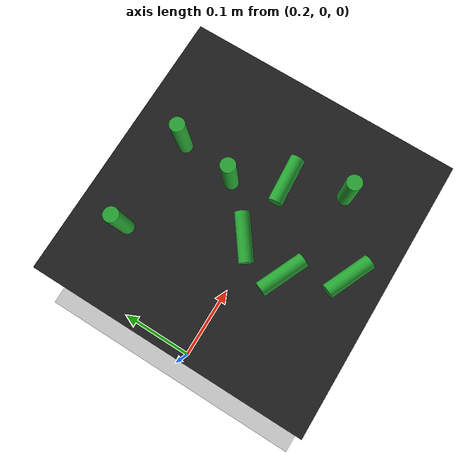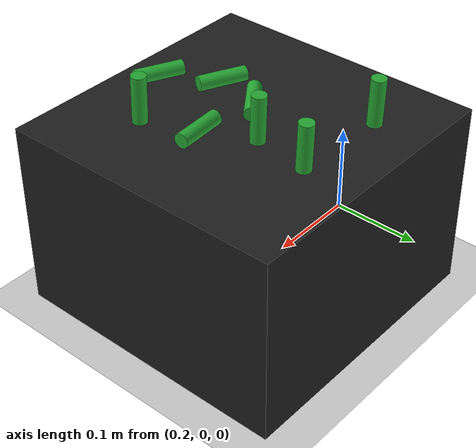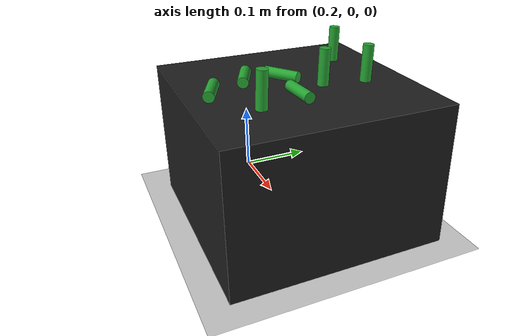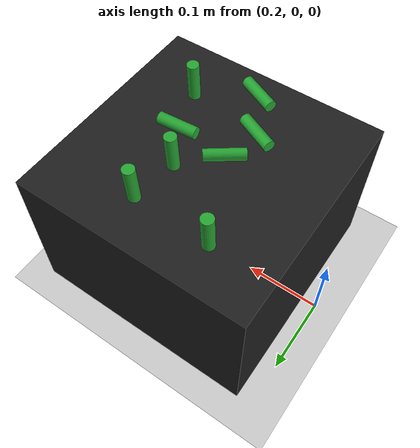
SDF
<sdf version="1.6">
 <world name="empty">
  <light name="sun" type="directional">
   <pose>0 0 10 0 -0 0</pose>
   <diffuse>0.8 0.8 0.8 1</diffuse>
   <specular>0.2 0.2 0.2 1</specular>
   <attenuation>
    <range>1000</range>
    <constant>0.9</constant>
    <linear>0.01</linear>
    <quadratic>0.001</quadratic>
   </attenuation>
   <direction>-0.5 0.1 -0.9</direction>
  </light>
  <model name="ground_plane">
   <static>1</static>
   <link name="link">
    <collision name="collision">
     <geometry><plane><normal>0 0 1</normal><size>100 100</size></plane></geometry>
     <surface><friction><ode><mu>100</mu><mu2>50</mu2></ode></friction></surface>
    </collision>
    <visual name="visual">
     <cast_shadows>0</cast_shadows>
     <geometry><plane><normal>0 0 1</normal><size>100 100</size></plane></geometry>
     <material>
      <script><uri>file://media/materials/scripts/gazebo.material</uri><name>Gazebo/Grey</name></script>
     </material>
    </visual>
   </link>
  </model>
  <physics name="default_physics" default="0" type="ode">
   <max_step_size>0.001</max_step_size>
   <real_time_factor>1</real_time_factor>
   <real_time_update_rate>1000</real_time_update_rate>
  </physics>
  <model name="coke_can_box_model">
   <pose>0.300249 0.104743 0.224752 -0.036841 0.010226 -0.000233</pose>
   <link name="coke_can">
    <inertial>
     <mass>1e-05</mass>
     <inertia><ixx>0.00016</ixx><ixy>0</ixy><ixz>0</ixz><iyy>0.00016</iyy><iyz>0</iyz><izz>6e-05</izz></inertia>
    </inertial>
    <collision name="collision">
     <geometry><cylinder><radius>0.0075</radius><length>0.05</length></cylinder></geometry>
     <surface>
      <friction><ode><mu>1e+13</mu><mu2>1e+12</mu2></ode></friction>
      <contact><ode><kp>1e+07</kp><kd>1</kd><min_depth>0.001</min_depth><max_vel>0.1</max_vel></ode></contact>
     </surface>
    </collision>
    <visual name="visual">
     <geometry><cylinder><radius>0.0075</radius><length>0.05</length></cylinder></geometry>
     <material>
      <script><name>Gazebo/Green</name><uri>file://media/materials/scripts/gazebo.material</uri></script>
     </material>
    </visual>
   </link>
  </model>
  <model name="coke_can_box_model_2">
   <pose>0.400238 0.100915 0.224768 -0.037141 0.009688 -0.00017</pose>
   <link name="coke_can">
    <inertial>
     <mass>1e-05</mass>
     <inertia><ixx>0.00016</ixx><ixy>0</ixy><ixz>0</ixz><iyy>0.00016</iyy><iyz>0</iyz><izz>6e-05</izz></inertia>
    </inertial>
    <collision name="collision">
     <geometry><cylinder><radius>0.0075</radius><length>0.05</length></cylinder></geometry>
     <surface>
      <friction><ode><mu>1e+12</mu><mu2>1e+12</mu2></ode></friction>
      <contact><ode><kp>1e+07</kp><kd>1</kd><min_depth>0.001</min_depth><max_vel>0.1</max_vel></ode></contact>
     </surface>
    </collision>
    <visual name="visual">
     <geometry><cylinder><radius>0.0075</radius><length>0.05</length></cylinder></geometry>
     <material>
      <script><name>Gazebo/Green</name><uri>file://media/materials/scripts/gazebo.material</uri></script>
     </material>
    </visual>
   </link>
  </model>
  <model name="coke_can_box_model_3">
   <pose>0.369343 -0.103681 0.207481 -0.923464 1.5622 -1.34516</pose>
   <link name="coke_can">
    <inertial>
     <mass>1e-05</mass>
     <inertia><ixx>0.00016</ixx><ixy>0</ixy><ixz>0</ixz><iyy>0.00016</iyy><iyz>0</iyz><izz>6e-05</izz></inertia>
    </inertial>
    <collision name="collision">
     <geometry><cylinder><radius>0.0075</radius><length>0.05</length></cylinder></geometry>
     <surface>
      <friction><ode><mu>1e+12</mu><mu2>1e+12</mu2></ode></friction>
      <contact><ode><kp>1e+07</kp><kd>1</kd><min_depth>0.001</min_depth><max_vel>0.1</max_vel></ode></contact>
     </surface>
    </collision>
    <visual name="visual">
     <geometry><cylinder><radius>0.0075</radius><length>0.05</length></cylinder></geometry>
     <material>
      <script><name>Gazebo/Green</name><uri>file://media/materials/scripts/gazebo.material</uri></script>
     </material>
    </visual>
   </link>
  </model>
  <model name="coke_can_box_model_4">
   <pose>0.350005 5.1e-05 0.207482 1.56584 -0.005688 -0.936281</pose>
   <link name="coke_can">
    <inertial>
     <mass>1e-05</mass>
     <inertia><ixx>0.00016</ixx><ixy>0</ixy><ixz>0</ixz><iyy>0.00016</iyy><iyz>0</iyz><izz>6e-05</izz></inertia>
    </inertial>
    <collision name="collision">
     <geometry><cylinder><radius>0.0075</radius><length>0.05</length></cylinder></geometry>
     <surface>
      <friction><ode><mu>1e+12</mu><mu2>1e+12</mu2></ode></friction>
      <contact><ode><kp>1e+07</kp><kd>1</kd><min_depth>0.001</min_depth><max_vel>0.1</max_vel></ode></contact>
     </surface>
    </collision>
    <visual name="visual">
     <geometry><cylinder><radius>0.0075</radius><length>0.05</length></cylinder></geometry>
     <material>
      <script><name>Gazebo/Green</name><uri>file://media/materials/scripts/gazebo.material</uri></script>
     </material>
    </visual>
   </link>
  </model>
  <model name="table_box_model">
   <static>1</static>
   <pose>0.369728 0.00873 0.1 0 -0 1.5708</pose>
   <link name="table_box_link">
    <inertial>
     <mass>1</mass>
     <inertia>
      <ixx>0.166667</ixx>
      <ixy>0</ixy>
      <ixz>0</ixz>
      <iyy>0.166667</iyy>
      <iyz>0</iyz>
      <izz>0.166667</izz>
     </inertia>
    </inertial>
    <collision name="collision">
     <geometry><box><size>0.3 0.3 0.2</size></box></geometry>
     <surface><friction><ode><mu>0.6</mu><mu2>0.6</mu2></ode></friction></surface>
    </collision>
    <visual name="visual">
     <geometry><box><size>0.3 0.3 0.2</size></box></geometry>
     <material>
      <script><name>Gazebo/Black</name><uri>file://media/materials/scripts/gazebo.material</uri></script>
     </material>
    </visual>
   </link>
  </model>
  <gravity>0 0 -9.81</gravity>
  <magnetic_field>6e-06 2.3e-05 -4.2e-05</magnetic_field>
  <atmosphere type="adiabatic"/>
  <scene><ambient>0.4 0.4 0.4 1</ambient><background>0.7 0.7 0.7 1</background><shadows>1</shadows></scene>
  <spherical_coordinates>
   <surface_model>EARTH_WGS84</surface_model>
   <latitude_deg>0</latitude_deg>
   <longitude_deg>0</longitude_deg>
   <elevation>0</elevation>
   <heading_deg>0</heading_deg>
  </spherical_coordinates>
  <model name="coke_can_box_model_4_clone">
   <pose>0.419399 -0.005784 0.207496 1.56965 -0.007504 -1.49935</pose>
   <link name="coke_can">
    <inertial>
     <mass>1e-05</mass>
     <inertia><ixx>0.00016</ixx><ixy>0</ixy><ixz>0</ixz><iyy>0.00016</iyy><iyz>0</iyz><izz>6e-05</izz></inertia>
    </inertial>
    <collision name="collision">
     <geometry><cylinder><radius>0.0075</radius><length>0.05</length></cylinder></geometry>
     <surface>
      <friction><ode><mu>1e+12</mu><mu2>1e+12</mu2></ode></friction>
      <contact><ode><kp>1e+07</kp><kd>1</kd><min_depth>0.001</min_depth><max_vel>0.1</max_vel></ode></contact>
     </surface>
    </collision>
    <visual name="visual">
     <geometry><cylinder><radius>0.0075</radius><length>0.05</length></cylinder></geometry>
     <material>
      <script><name>Gazebo/Green</name><uri>file://media/materials/scripts/gazebo.material</uri></script>
     </material>
    </visual>
   </link>
  </model>
  <model name="coke_can_box_model_3_clone">
   <pose>0.338198 -0.049158 0.207481 -0.923404 1.5622 -1.3451</pose>
   <link name="coke_can">
    <inertial>
     <mass>1e-05</mass>
     <inertia><ixx>0.00016</ixx><ixy>0</ixy><ixz>0</ixz><iyy>0.00016</iyy><iyz>0</iyz><izz>6e-05</izz></inertia>
    </inertial>
    <collision name="collision">
     <geometry><cylinder><radius>0.0075</radius><length>0.05</length></cylinder></geometry>
     <surface>
      <friction><ode><mu>1e+12</mu><mu2>1e+12</mu2></ode></friction>
      <contact><ode><kp>1e+07</kp><kd>1</kd><min_depth>0.001</min_depth><max_vel>0.1</max_vel></ode></contact>
     </surface>
    </collision>
    <visual name="visual">
     <geometry><cylinder><radius>0.0075</radius><length>0.05</length></cylinder></geometry>
     <material>
      <script><name>Gazebo/Green</name><uri>file://media/materials/scripts/gazebo.material</uri></script>
     </material>
    </visual>
   </link>
  </model>
  <model name="coke_can_box_model_clone">
   <pose>0.39175 0.041483 0.224751 -0.036827 0.010214 -0.000234</pose>
   <link name="coke_can">
    <inertial>
     <mass>1e-05</mass>
     <inertia><ixx>0.00016</ixx><ixy>0</ixy><ixz>0</ixz><iyy>0.00016</iyy><iyz>0</iyz><izz>6e-05</izz></inertia>
    </inertial>
    <collision name="collision">
     <geometry><cylinder><radius>0.0075</radius><length>0.05</length></cylinder></geometry>
     <surface>
      <friction><ode><mu>1e+13</mu><mu2>1e+12</mu2></ode></friction>
      <contact><ode><kp>1e+07</kp><kd>1</kd><min_depth>0.001</min_depth><max_vel>0.1</max_vel></ode></contact>
     </surface>
    </collision>
    <visual name="visual">
     <geometry><cylinder><radius>0.0075</radius><length>0.05</length></cylinder></geometry>
     <material>
      <script><name>Gazebo/Green</name><uri>file://media/materials/scripts/gazebo.material</uri></script>
     </material>
    </visual>
   </link>
  </model>
  <model name="coke_can_box_model_clone_clone">
   <pose>0.436694 -0.062375 0.224751 -0.036791 0.0102 -0.000233</pose>
   <link name="coke_can">
    <inertial>
     <mass>1e-05</mass>
     <inertia><ixx>0.00016</ixx><ixy>0</ixy><ixz>0</ixz><iyy>0.00016</iyy><iyz>0</iyz><izz>6e-05</izz></inertia>
    </inertial>
    <collision name="collision">
     <geometry><cylinder><radius>0.0075</radius><length>0.05</length></cylinder></geometry>
     <surface>
      <friction><ode><mu>1e+13</mu><mu2>1e+12</mu2></ode></friction>
      <contact><ode><kp>1e+07</kp><kd>1</kd><min_depth>0.001</min_depth><max_vel>0.1</max_vel></ode></contact>
     </surface>
    </collision>
    <visual name="visual">
     <geometry><cylinder><radius>0.0075</radius><length>0.05</length></cylinder></geometry>
     <material>
      <script><name>Gazebo/Green</name><uri>file://media/materials/scripts/gazebo.material</uri></script>
     </material>
    </visual>
   </link>
  </model>
 </world>
</sdf>
